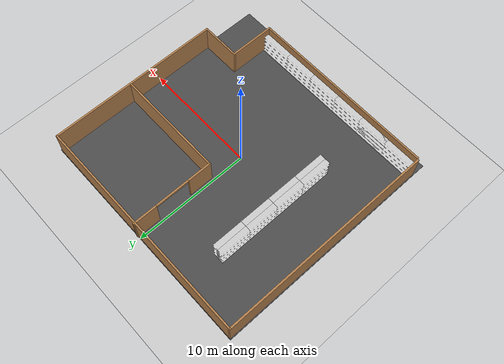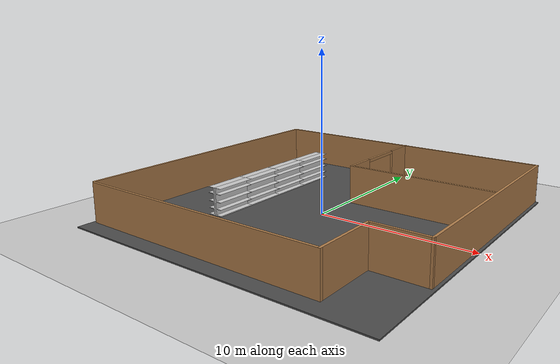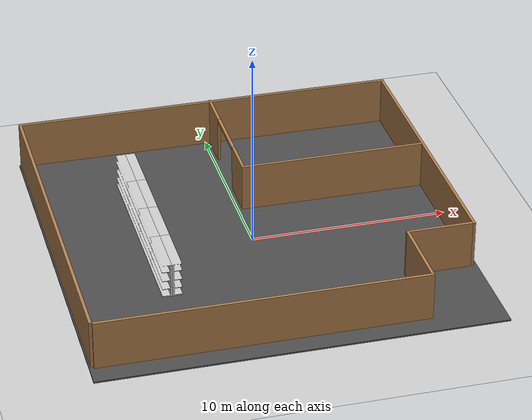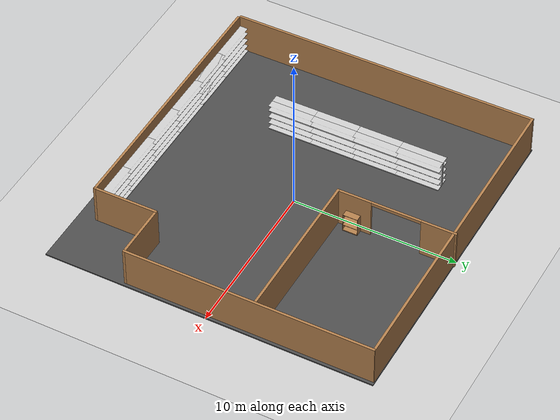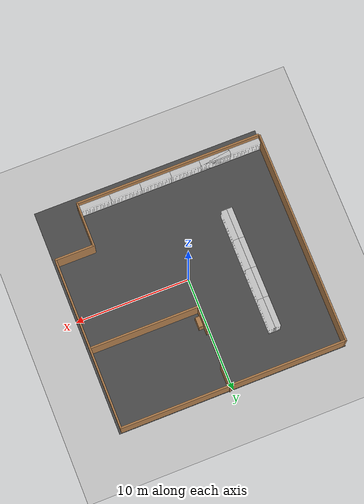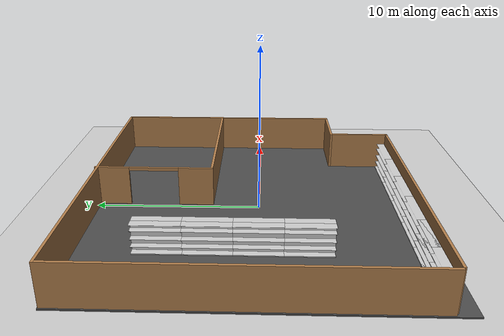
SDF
<sdf version="1.7">
 <world name="default">
  <model name="ground_plane">
   <static>1</static>
   <link name="link">
    <collision name="collision">
     <geometry><plane><normal>0 0 1</normal><size>100 100</size></plane></geometry>
     <surface><friction><ode><mu>100</mu><mu2>50</mu2></ode></friction></surface>
    </collision>
    <visual name="visual">
     <cast_shadows>0</cast_shadows>
     <geometry><plane><normal>0 0 1</normal><size>100 100</size></plane></geometry>
     <material>
      <script><uri>file://media/materials/scripts/gazebo.material</uri><name>Gazebo/Grey</name></script>
     </material>
    </visual>
   </link>
  </model>
  <gravity>0 0 -9.8</gravity>
  <magnetic_field>6e-06 2.3e-05 -4.2e-05</magnetic_field>
  <atmosphere type="adiabatic"/>
  <physics type="ode">
   <max_step_size>0.001</max_step_size>
   <real_time_factor>1</real_time_factor>
   <real_time_update_rate>1000</real_time_update_rate>
  </physics>
  <scene><ambient>0.4 0.4 0.4 1</ambient><background>0.7 0.7 0.7 1</background><shadows>1</shadows></scene>
  <audio><device>default</device></audio>
  <spherical_coordinates>
   <surface_model>EARTH_WGS84</surface_model>
   <latitude_deg>0</latitude_deg>
   <longitude_deg>0</longitude_deg>
   <elevation>0</elevation>
   <heading_deg>0</heading_deg>
  </spherical_coordinates>
  <model name="supermarket">
   <pose>-0.052742 0.545535 0 0 -0 0</pose>
   <link name="Wall_10">
    <collision name="Wall_10_Collision">
     <geometry><box><size>16.25 0.15 2.5</size></box></geometry>
     <pose>0 0 1.25 0 -0 0</pose>
    </collision>
    <visual name="Wall_10_Visual">
     <pose>0 0 1.25 0 -0 0</pose>
     <geometry><box><size>16.25 0.15 2.5</size></box></geometry>
     <material>
      <script><uri>file://media/materials/scripts/gazebo.material</uri><name>Gazebo/Wood</name></script>
      <ambient>1 1 1 1</ambient>
     </material>
     <meta><layer>0</layer></meta>
    </visual>
    <pose>-1.6 -9.43847 0 0 -0 3.14159</pose>
   </link>
   <link name="Wall_12">
    <collision name="Wall_12_Collision">
     <geometry><box><size>19.75 0.15 2.5</size></box></geometry>
     <pose>0 0 1.25 0 -0 0</pose>
    </collision>
    <visual name="Wall_12_Visual">
     <pose>0 0 1.25 0 -0 0</pose>
     <geometry><box><size>19.75 0.15 2.5</size></box></geometry>
     <material>
      <script><uri>file://media/materials/scripts/gazebo.material</uri><name>Gazebo/Wood</name></script>
      <ambient>1 1 1 1</ambient>
     </material>
     <meta><layer>0</layer></meta>
    </visual>
    <pose>0 9.34442 0 0 -0 0</pose>
   </link>
   <link name="Wall_14">
    <pose>0.326124 5.88847 0 0 -0 -1.5708</pose>
    <visual name="Wall_14_Visual_0">
     <pose>-2.56178 0 1.25 0 -0 0</pose>
     <geometry><box><size>2.12644 0.15 2.5</size></box></geometry>
     <material>
      <script><uri>file://media/materials/scripts/gazebo.material</uri><name>Gazebo/Wood</name></script>
      <ambient>0.760784 0.662745 0.627451 1</ambient>
     </material>
     <meta><layer>0</layer></meta>
    </visual>
    <collision name="Wall_14_Collision_0">
     <geometry><box><size>2.12644 0.15 2.5</size></box></geometry>
     <pose>-2.56178 0 1.25 0 -0 0</pose>
    </collision>
    <visual name="Wall_14_Visual_1">
     <pose>2.56322 0 1.25 0 -0 0</pose>
     <geometry><box><size>2.12356 0.15 2.5</size></box></geometry>
     <material>
      <script><uri>file://media/materials/scripts/gazebo.material</uri><name>Gazebo/Wood</name></script>
      <ambient>0.760784 0.662745 0.627451 1</ambient>
     </material>
     <meta><layer>0</layer></meta>
    </visual>
    <collision name="Wall_14_Collision_1">
     <geometry><box><size>2.12356 0.15 2.5</size></box></geometry>
     <pose>2.56322 0 1.25 0 -0 0</pose>
    </collision>
    <visual name="Wall_14_Visual_2">
     <pose>0.001436 0 2.4 0 -0 0</pose>
     <geometry><box><size>3 0.15 0.2</size></box></geometry>
     <material>
      <script><uri>file://media/materials/scripts/gazebo.material</uri><name>Gazebo/Wood</name></script>
      <ambient>0.760784 0.662745 0.627451 1</ambient>
     </material>
     <meta><layer>0</layer></meta>
    </visual>
    <collision name="Wall_14_Collision_2">
     <geometry><box><size>3 0.15 0.2</size></box></geometry>
     <pose>0.001436 0 2.4 0 -0 0</pose>
    </collision>
   </link>
   <link name="Wall_17">
    <collision name="Wall_17_Collision">
     <geometry><box><size>9.5 0.15 2.5</size></box></geometry>
     <pose>0 0 1.25 0 -0 0</pose>
    </collision>
    <visual name="Wall_17_Visual">
     <pose>0 0 1.25 0 -0 0</pose>
     <geometry><box><size>9.5 0.15 2.5</size></box></geometry>
     <material>
      <script><uri>file://media/materials/scripts/gazebo.material</uri><name>Gazebo/Wood</name></script>
      <ambient>1 0.764706 0.305882 1</ambient>
     </material>
     <meta><layer>0</layer></meta>
    </visual>
    <pose>5.00112 2.33846 0 0 -0 0</pose>
   </link>
   <link name="Wall_2">
    <collision name="Wall_2_Collision">
     <geometry><box><size>18.8177 0.15 2.5</size></box></geometry>
     <pose>0 0 1.25 0 -0 0</pose>
    </collision>
    <visual name="Wall_2_Visual">
     <pose>0 0 1.25 0 -0 0</pose>
     <geometry><box><size>18.8177 0.15 2.5</size></box></geometry>
     <material>
      <script><uri>file://media/materials/scripts/gazebo.material</uri><name>Gazebo/Wood</name></script>
      <ambient>1 0.764706 0.305882 1</ambient>
     </material>
     <meta><layer>0</layer></meta>
    </visual>
    <pose>-9.8 0.010583 0 0 -0 1.5708</pose>
   </link>
   <link name="Wall_4">
    <collision name="Wall_4_Collision">
     <geometry><box><size>15.0525 0.15 2.5</size></box></geometry>
     <pose>0 0 1.25 0 -0 0</pose>
    </collision>
    <visual name="Wall_4_Visual">
     <pose>0 0 1.25 0 -0 0</pose>
     <geometry><box><size>15.0525 0.15 2.5</size></box></geometry>
     <material>
      <script><uri>file://media/materials/scripts/gazebo.material</uri><name>Gazebo/Wood</name></script>
      <ambient>1 1 1 1</ambient>
     </material>
     <meta><layer>0</layer></meta>
    </visual>
    <pose>9.8 1.86277 0 0 -0 -1.5708</pose>
   </link>
   <link name="Wall_5">
    <collision name="Wall_5_Collision">
     <geometry><box><size>3.5 0.15 2.5</size></box></geometry>
     <pose>0 0 1.25 0 -0 0</pose>
    </collision>
    <visual name="Wall_5_Visual">
     <pose>0 0 1.25 0 -0 0</pose>
     <geometry><box><size>3.5 0.15 2.5</size></box></geometry>
     <material>
      <script><uri>file://media/materials/scripts/gazebo.material</uri><name>Gazebo/Wood</name></script>
      <ambient>1 1 1 1</ambient>
     </material>
     <meta><layer>0</layer></meta>
    </visual>
    <pose>8.125 -5.58847 0 0 -0 3.14159</pose>
   </link>
   <link name="Wall_6">
    <collision name="Wall_6_Collision">
     <geometry><box><size>4 0.15 2.5</size></box></geometry>
     <pose>0 0 1.25 0 -0 0</pose>
    </collision>
    <visual name="Wall_6_Visual">
     <pose>0 0 1.25 0 -0 0</pose>
     <geometry><box><size>4 0.15 2.5</size></box></geometry>
     <material>
      <script><uri>file://media/materials/scripts/gazebo.material</uri><name>Gazebo/Wood</name></script>
      <ambient>1 1 1 1</ambient>
     </material>
     <meta><layer>0</layer></meta>
    </visual>
    <pose>6.45 -7.51347 0 0 -0 -1.5708</pose>
   </link>
   <static>1</static>
  </model>
  <model name="supermarket shelf_clone">
   <pose>-4.76923 2.6936 0.878 0 -0 0</pose>
   <static>1</static>
   <link name="link">
    <inertial>
     <mass>10</mass>
     <inertia><ixx>2.69</ixx><ixy>0</ixy><ixz>0</ixz><iyy>0.173387</iyy><iyz>0</iyz><izz>2.85</izz></inertia>
    </inertial>
    <collision name="collision">
     <geometry><mesh><uri>/usr/share/gazebo-11/models/shelf/shelf_one.dae</uri></mesh></geometry>
    </collision>
    <visual name="visual">
     <geometry><mesh><uri>/usr/share/gazebo-11/models/shelf/shelf_one.dae</uri></mesh></geometry>
    </visual>
   </link>
  </model>
  <model name="supermarket shelf_clone_clone">
   <pose>-4.76923 -0.003387 0.878 0 -0 0</pose>
   <static>1</static>
   <link name="link">
    <inertial>
     <mass>10</mass>
     <inertia><ixx>2.69</ixx><ixy>0</ixy><ixz>0</ixz><iyy>0.173387</iyy><iyz>0</iyz><izz>2.85</izz></inertia>
    </inertial>
    <collision name="collision">
     <geometry><mesh><uri>/usr/share/gazebo-11/models/shelf/shelf_one.dae</uri></mesh></geometry>
    </collision>
    <visual name="visual">
     <geometry><mesh><uri>/usr/share/gazebo-11/models/shelf/shelf_one.dae</uri></mesh></geometry>
    </visual>
   </link>
  </model>
  <model name="supermarket shelf_clone_clone_clone">
   <pose>-5.19766 -0.007243 0.878 0 0 -3.14</pose>
   <static>1</static>
   <link name="link">
    <inertial>
     <mass>10</mass>
     <inertia><ixx>2.69</ixx><ixy>0</ixy><ixz>0</ixz><iyy>0.173387</iyy><iyz>0</iyz><izz>2.85</izz></inertia>
    </inertial>
    <collision name="collision">
     <geometry><mesh><uri>/usr/share/gazebo-11/models/shelf/shelf_one.dae</uri></mesh></geometry>
    </collision>
    <visual name="visual">
     <geometry><mesh><uri>/usr/share/gazebo-11/models/shelf/shelf_one.dae</uri></mesh></geometry>
    </visual>
   </link>
  </model>
  <model name="supermarket shelf_clone_clone_clone_clone">
   <pose>-5.19766 2.6936 0.878 0 0 -3.14</pose>
   <static>1</static>
   <link name="link">
    <inertial>
     <mass>10</mass>
     <inertia><ixx>2.69</ixx><ixy>0</ixy><ixz>0</ixz><iyy>0.173387</iyy><iyz>0</iyz><izz>2.85</izz></inertia>
    </inertial>
    <collision name="collision">
     <geometry><mesh><uri>/usr/share/gazebo-11/models/shelf/shelf_one.dae</uri></mesh></geometry>
    </collision>
    <visual name="visual">
     <geometry><mesh><uri>/usr/share/gazebo-11/models/shelf/shelf_one.dae</uri></mesh></geometry>
    </visual>
   </link>
  </model>
  <model name="supermarket shelf_clone_clone_clone_clone_clone">
   <pose>-5.19766 5.38263 0.878 0 0 -3.14</pose>
   <static>1</static>
   <link name="link">
    <inertial>
     <mass>10</mass>
     <inertia><ixx>2.69</ixx><ixy>0</ixy><ixz>0</ixz><iyy>0.173387</iyy><iyz>0</iyz><izz>2.85</izz></inertia>
    </inertial>
    <collision name="collision">
     <geometry><mesh><uri>/usr/share/gazebo-11/models/shelf/shelf_one.dae</uri></mesh></geometry>
    </collision>
    <visual name="visual">
     <geometry><mesh><uri>/usr/share/gazebo-11/models/shelf/shelf_one.dae</uri></mesh></geometry>
    </visual>
   </link>
  </model>
  <model name="supermarket shelf_clone_clone_clone_0">
   <pose>-8.42214 -8.57565 0.878 0 -0 1.57</pose>
   <static>1</static>
   <link name="link">
    <inertial>
     <mass>10</mass>
     <inertia><ixx>2.69</ixx><ixy>0</ixy><ixz>0</ixz><iyy>0.173387</iyy><iyz>0</iyz><izz>2.85</izz></inertia>
    </inertial>
    <collision name="collision">
     <geometry><mesh><uri>/usr/share/gazebo-11/models/shelf/shelf_one.dae</uri></mesh></geometry>
    </collision>
    <visual name="visual">
     <geometry><mesh><uri>/usr/share/gazebo-11/models/shelf/shelf_one.dae</uri></mesh></geometry>
    </visual>
   </link>
  </model>
  <model name="supermarket shelf_clone_clone_clone_0_clone">
   <pose>-5.74433 -8.57565 0.878 0 -0 1.57</pose>
   <static>1</static>
   <link name="link">
    <inertial>
     <mass>10</mass>
     <inertia><ixx>2.69</ixx><ixy>0</ixy><ixz>0</ixz><iyy>0.173387</iyy><iyz>0</iyz><izz>2.85</izz></inertia>
    </inertial>
    <collision name="collision">
     <geometry><mesh><uri>/usr/share/gazebo-11/models/shelf/shelf_one.dae</uri></mesh></geometry>
    </collision>
    <visual name="visual">
     <geometry><mesh><uri>/usr/share/gazebo-11/models/shelf/shelf_one.dae</uri></mesh></geometry>
    </visual>
   </link>
  </model>
  <model name="supermarket shelf_clone_clone_clone_1">
   <pose>-4.7686 -2.69756 0.878 0 -0 0</pose>
   <static>1</static>
   <link name="link">
    <inertial>
     <mass>10</mass>
     <inertia><ixx>2.69</ixx><ixy>0</ixy><ixz>0</ixz><iyy>0.173387</iyy><iyz>0</iyz><izz>2.85</izz></inertia>
    </inertial>
    <collision name="collision">
     <geometry><mesh><uri>/usr/share/gazebo-11/models/shelf/shelf_one.dae</uri></mesh></geometry>
    </collision>
    <visual name="visual">
     <geometry><mesh><uri>/usr/share/gazebo-11/models/shelf/shelf_one.dae</uri></mesh></geometry>
    </visual>
   </link>
  </model>
  <model name="supermarket shelf_clone_clone_clone_clone_0">
   <pose>-5.19766 -2.69756 0.878 0 0 -3.14</pose>
   <static>1</static>
   <link name="link">
    <inertial>
     <mass>10</mass>
     <inertia><ixx>2.69</ixx><ixy>0</ixy><ixz>0</ixz><iyy>0.173387</iyy><iyz>0</iyz><izz>2.85</izz></inertia>
    </inertial>
    <collision name="collision">
     <geometry><mesh><uri>/usr/share/gazebo-11/models/shelf/shelf_one.dae</uri></mesh></geometry>
    </collision>
    <visual name="visual">
     <geometry><mesh><uri>/usr/share/gazebo-11/models/shelf/shelf_one.dae</uri></mesh></geometry>
    </visual>
   </link>
  </model>
  <light name="sun" type="directional">
   <pose>0.161184 0.308418 10 0 -0 0</pose>
   <diffuse>0.8 0.8 0.8 1</diffuse>
   <specular>0.2 0.2 0.2 1</specular>
   <attenuation>
    <range>1000</range>
    <constant>0.9</constant>
    <linear>0.01</linear>
    <quadratic>0.001</quadratic>
   </attenuation>
   <direction>-0.5 0.1 -0.9</direction>
  </light>
  <model name="supermarket shelf_clone_clone_clone_0_clone_clone">
   <pose>-5.74433 -8.57423 0.878 0 -0 1.57</pose>
   <static>1</static>
   <link name="link">
    <inertial>
     <mass>10</mass>
     <inertia><ixx>2.69</ixx><ixy>0</ixy><ixz>0</ixz><iyy>0.173387</iyy><iyz>0</iyz><izz>2.85</izz></inertia>
    </inertial>
    <collision name="collision">
     <geometry><mesh><uri>/usr/share/gazebo-11/models/shelf/shelf_one.dae</uri></mesh></geometry>
    </collision>
    <visual name="visual">
     <geometry><mesh><uri>/usr/share/gazebo-11/models/shelf/shelf_one.dae</uri></mesh></geometry>
    </visual>
   </link>
  </model>
  <model name="supermarket shelf_clone_clone_clone_0_clone_clone_clone">
   <pose>-0.412233 -8.57558 0.878 0 -0 1.57</pose>
   <static>1</static>
   <link name="link">
    <inertial>
     <mass>10</mass>
     <inertia><ixx>2.69</ixx><ixy>0</ixy><ixz>0</ixz><iyy>0.173387</iyy><iyz>0</iyz><izz>2.85</izz></inertia>
    </inertial>
    <collision name="collision">
     <geometry><mesh><uri>/usr/share/gazebo-11/models/shelf/shelf_one.dae</uri></mesh></geometry>
    </collision>
    <visual name="visual">
     <geometry><mesh><uri>/usr/share/gazebo-11/models/shelf/shelf_one.dae</uri></mesh></geometry>
    </visual>
   </link>
  </model>
  <model name="supermarket shelf_clone_clone_clone_0_clone_clone_clone_clone">
   <pose>2.28797 -8.57557 0.878 0 -0 1.57</pose>
   <static>1</static>
   <link name="link">
    <inertial>
     <mass>10</mass>
     <inertia><ixx>2.69</ixx><ixy>0</ixy><ixz>0</ixz><iyy>0.173387</iyy><iyz>0</iyz><izz>2.85</izz></inertia>
    </inertial>
    <collision name="collision">
     <geometry><mesh><uri>/usr/share/gazebo-11/models/shelf/shelf_one.dae</uri></mesh></geometry>
    </collision>
    <visual name="visual">
     <geometry><mesh><uri>/usr/share/gazebo-11/models/shelf/shelf_one.dae</uri></mesh></geometry>
    </visual>
   </link>
  </model>
  <model name="supermarket shelf_clone_clone_clone_0_clone_clone_clone_clone_0">
   <pose>4.96878 -8.57556 0.878 0 -0 1.57</pose>
   <static>1</static>
   <link name="link">
    <inertial>
     <mass>10</mass>
     <inertia><ixx>2.69</ixx><ixy>0</ixy><ixz>0</ixz><iyy>0.173387</iyy><iyz>0</iyz><izz>2.85</izz></inertia>
    </inertial>
    <collision name="collision">
     <geometry><mesh><uri>/usr/share/gazebo-11/models/shelf/shelf_one.dae</uri></mesh></geometry>
    </collision>
    <visual name="visual">
     <geometry><mesh><uri>/usr/share/gazebo-11/models/shelf/shelf_one.dae</uri></mesh></geometry>
    </visual>
   </link>
  </model>
  <model name="supermarket shelf_clone_clone_clone_0_clone_clone_clone_0">
   <pose>-3.09835 -8.57565 0.878 0 -0 1.57</pose>
   <static>1</static>
   <link name="link">
    <inertial>
     <mass>10</mass>
     <inertia><ixx>2.69</ixx><ixy>0</ixy><ixz>0</ixz><iyy>0.173387</iyy><iyz>0</iyz><izz>2.85</izz></inertia>
    </inertial>
    <collision name="collision">
     <geometry><mesh><uri>/usr/share/gazebo-11/models/shelf/shelf_one.dae</uri></mesh></geometry>
    </collision>
    <visual name="visual">
     <geometry><mesh><uri>/usr/share/gazebo-11/models/shelf/shelf_one.dae</uri></mesh></geometry>
    </visual>
   </link>
  </model>
  <light name="user_point_light_0" type="point">
   <pose>6.50751 6.31317 1 0 -0 0</pose>
   <diffuse>0.5 0.5 0.5 1</diffuse>
   <specular>0.1 0.1 0.1 1</specular>
   <attenuation>
    <range>20</range>
    <constant>0.5</constant>
    <linear>0.01</linear>
    <quadratic>0.001</quadratic>
   </attenuation>
   <cast_shadows>0</cast_shadows>
   <direction>0 0 -1</direction>
  </light>
  <light name="user_point_light_1" type="point">
   <pose>2.82164 -0.449456 1 0 -0 0</pose>
   <diffuse>0.5 0.5 0.5 1</diffuse>
   <specular>0.1 0.1 0.1 1</specular>
   <attenuation>
    <range>20</range>
    <constant>0.5</constant>
    <linear>0.01</linear>
    <quadratic>0.001</quadratic>
   </attenuation>
   <cast_shadows>0</cast_shadows>
   <direction>0 0 -1</direction>
  </light>
  <light name="user_point_light_2" type="point">
   <pose>-3.79358 2.00515 1 0 -0 0</pose>
   <diffuse>0.5 0.5 0.5 1</diffuse>
   <specular>0.1 0.1 0.1 1</specular>
   <attenuation>
    <range>20</range>
    <constant>0.5</constant>
    <linear>0.01</linear>
    <quadratic>0.001</quadratic>
   </attenuation>
   <cast_shadows>0</cast_shadows>
   <direction>0 0 -1</direction>
  </light>
  <light name="user_point_light_1_clone" type="point">
   <pose>-2.35526 5.12361 1 0 -0 0</pose>
   <diffuse>0.5 0.5 0.5 1</diffuse>
   <specular>0.1 0.1 0.1 1</specular>
   <direction>0 0 -1</direction>
   <attenuation>
    <range>20</range>
    <constant>0.5</constant>
    <linear>0.01</linear>
    <quadratic>0.001</quadratic>
   </attenuation>
   <cast_shadows>0</cast_shadows>
  </light>
  <light name="user_point_light_1_clone_0" type="point">
   <pose>-7.38943 -5.31314 1 0 -0 0</pose>
   <diffuse>0.5 0.5 0.5 1</diffuse>
   <specular>0.1 0.1 0.1 1</specular>
   <direction>0 0 -1</direction>
   <attenuation>
    <range>20</range>
    <constant>0.5</constant>
    <linear>0.01</linear>
    <quadratic>0.001</quadratic>
   </attenuation>
   <cast_shadows>0</cast_shadows>
  </light>
  <light name="user_point_light_1_clone_1" type="point">
   <pose>-1.12962 -0.721007 1 0 -0 0</pose>
   <diffuse>0.5 0.5 0.5 1</diffuse>
   <specular>0.1 0.1 0.1 1</specular>
   <direction>0 0 -1</direction>
   <attenuation>
    <range>20</range>
    <constant>0.5</constant>
    <linear>0.01</linear>
    <quadratic>0.001</quadratic>
   </attenuation>
   <cast_shadows>0</cast_shadows>
  </light>
  <light name="user_point_light_1_clone_2" type="point">
   <pose>-8.2082 7.33597 1 0 -0 0</pose>
   <diffuse>0.5 0.5 0.5 1</diffuse>
   <specular>0.1 0.1 0.1 1</specular>
   <direction>0 0 -1</direction>
   <attenuation>
    <range>20</range>
    <constant>0.5</constant>
    <linear>0.01</linear>
    <quadratic>0.001</quadratic>
   </attenuation>
   <cast_shadows>0</cast_shadows>
  </light>
  <light name="user_point_light_1_clone_3" type="point">
   <pose>-7.01825 -4.43028 1 0 -0 0</pose>
   <diffuse>0.5 0.5 0.5 1</diffuse>
   <specular>0.1 0.1 0.1 1</specular>
   <direction>0 0 -1</direction>
   <attenuation>
    <range>20</range>
    <constant>0.5</constant>
    <linear>0.01</linear>
    <quadratic>0.001</quadratic>
   </attenuation>
   <cast_shadows>0</cast_shadows>
  </light>
  <light name="user_point_light_1_clone_4" type="point">
   <pose>8.45489 -0.057652 1 0 -0 0</pose>
   <diffuse>0.5 0.5 0.5 1</diffuse>
   <specular>0.1 0.1 0.1 1</specular>
   <direction>0 0 -1</direction>
   <attenuation>
    <range>20</range>
    <constant>0.5</constant>
    <linear>0.01</linear>
    <quadratic>0.001</quadratic>
   </attenuation>
   <cast_shadows>0</cast_shadows>
  </light>
  <light name="user_point_light_3" type="point">
   <pose>4.43812 -6.49236 1 0 -0 0</pose>
   <diffuse>0.5 0.5 0.5 1</diffuse>
   <specular>0.1 0.1 0.1 1</specular>
   <attenuation>
    <range>20</range>
    <constant>0.5</constant>
    <linear>0.01</linear>
    <quadratic>0.001</quadratic>
   </attenuation>
   <cast_shadows>0</cast_shadows>
   <direction>0 0 -1</direction>
  </light>
  <model name="bookshelf">
   <static>1</static>
   <link name="link">
    <inertial><mass>1</mass></inertial>
    <collision name="back">
     <pose>0 0.005 0.6 0 -0 0</pose>
     <geometry><box><size>0.9 0.01 1.2</size></box></geometry>
    </collision>
    <visual name="visual1">
     <pose>0 0.005 0.6 0 -0 0</pose>
     <geometry><box><size>0.9 0.01 1.2</size></box></geometry>
     <material>
      <script><uri>file://media/materials/scripts/gazebo.material</uri><name>Gazebo/Wood</name></script>
     </material>
    </visual>
    <collision name="left_side">
     <pose>0.45 -0.195 0.6 0 -0 0</pose>
     <geometry><box><size>0.02 0.4 1.2</size></box></geometry>
    </collision>
    <visual name="visual2">
     <pose>0.45 -0.195 0.6 0 -0 0</pose>
     <geometry><box><size>0.02 0.4 1.2</size></box></geometry>
     <material>
      <script><uri>file://media/materials/scripts/gazebo.material</uri><name>Gazebo/Wood</name></script>
     </material>
    </visual>
    <collision name="right_side">
     <pose>-0.45 -0.195 0.6 0 -0 0</pose>
     <geometry><box><size>0.02 0.4 1.2</size></box></geometry>
    </collision>
    <visual name="visual3">
     <pose>-0.45 -0.195 0.6 0 -0 0</pose>
     <geometry><box><size>0.02 0.4 1.2</size></box></geometry>
     <material>
      <script><uri>file://media/materials/scripts/gazebo.material</uri><name>Gazebo/Wood</name></script>
     </material>
    </visual>
    <collision name="bottom">
     <pose>0 -0.195 0.03 0 -0 0</pose>
     <geometry><box><size>0.88 0.4 0.06</size></box></geometry>
    </collision>
    <visual name="visual4">
     <pose>0 -0.195 0.03 0 -0 0</pose>
     <geometry><box><size>0.88 0.4 0.06</size></box></geometry>
     <material>
      <script><uri>file://media/materials/scripts/gazebo.material</uri><name>Gazebo/Wood</name></script>
     </material>
    </visual>
    <collision name="top">
     <pose>0 -0.195 1.19 0 -0 0</pose>
     <geometry><box><size>0.88 0.4 0.02</size></box></geometry>
    </collision>
    <visual name="visual5">
     <pose>0 -0.195 1.19 0 -0 0</pose>
     <geometry><box><size>0.88 0.4 0.02</size></box></geometry>
     <material>
      <script><uri>file://media/materials/scripts/gazebo.material</uri><name>Gazebo/Wood</name></script>
     </material>
    </visual>
    <collision name="low_shelf">
     <pose>0 -0.195 0.43 0 -0 0</pose>
     <geometry><box><size>0.88 0.4 0.02</size></box></geometry>
    </collision>
    <visual name="visual6">
     <pose>0 -0.195 0.43 0 -0 0</pose>
     <geometry><box><size>0.88 0.4 0.02</size></box></geometry>
     <material>
      <script><uri>file://media/materials/scripts/gazebo.material</uri><name>Gazebo/Wood</name></script>
     </material>
    </visual>
    <collision name="high_shelf">
     <pose>0 -0.195 0.8 0 -0 0</pose>
     <geometry><box><size>0.88 0.4 0.02</size></box></geometry>
    </collision>
    <visual name="visual7">
     <pose>0 -0.195 0.8 0 -0 0</pose>
     <geometry><box><size>0.88 0.4 0.02</size></box></geometry>
     <material>
      <script><uri>file://media/materials/scripts/gazebo.material</uri><name>Gazebo/Wood</name></script>
     </material>
    </visual>
   </link>
   <pose>0.396756 3.89634 0.086256 0 -0 1.57</pose>
  </model>
  <light name="user_directional_light_0" type="directional">
   <pose>-7.56991 -6.08953 1 0 -0 0</pose>
   <diffuse>0.5 0.5 0.5 1</diffuse>
   <specular>0.1 0.1 0.1 1</specular>
   <direction>0.1 0.1 -0.9</direction>
   <attenuation>
    <range>20</range>
    <constant>0.5</constant>
    <linear>0.01</linear>
    <quadratic>0.001</quadratic>
   </attenuation>
  </light>
  <light name="user_directional_light_1" type="directional">
   <pose>2.15895 -7.35936 1 0 -0 0</pose>
   <diffuse>0.5 0.5 0.5 1</diffuse>
   <specular>0.1 0.1 0.1 1</specular>
   <direction>0.1 0.1 -0.9</direction>
   <attenuation>
    <range>20</range>
    <constant>0.5</constant>
    <linear>0.01</linear>
    <quadratic>0.001</quadratic>
   </attenuation>
  </light>
  <light name="user_directional_light_2" type="directional">
   <pose>-6.95553 8.14957 1 0 -0 0</pose>
   <diffuse>0.5 0.5 0.5 1</diffuse>
   <specular>0.1 0.1 0.1 1</specular>
   <direction>0.1 0.1 -0.9</direction>
   <attenuation>
    <range>20</range>
    <constant>0.5</constant>
    <linear>0.01</linear>
    <quadratic>0.001</quadratic>
   </attenuation>
  </light>
  <light name="user_directional_light_3" type="directional">
   <pose>4.69007 5.49697 1 0 -0 0</pose>
   <diffuse>0.5 0.5 0.5 1</diffuse>
   <specular>0.1 0.1 0.1 1</specular>
   <direction>0.1 0.1 -0.9</direction>
   <attenuation>
    <range>20</range>
    <constant>0.5</constant>
    <linear>0.01</linear>
    <quadratic>0.001</quadratic>
   </attenuation>
  </light>
  <model name="asphalt_plane">
   <static>1</static>
   <link name="link">
    <collision name="collision"><geometry><box><size>20 20 0.1</size></box></geometry></collision>
    <visual name="visual">
     <cast_shadows>0</cast_shadows>
     <geometry><box><size>20 20 0.1</size></box></geometry>
     <material>
      <script>
       <uri>model://asphalt_plane/materials/scripts</uri>
       <uri>model://asphalt_plane/materials/textures</uri>
       <name>vrc/asphalt</name>
      </script>
     </material>
    </visual>
   </link>
  </model>
  <model name="supermarket shelf_clone_clone_0">
   <pose>-4.76923 5.38263 0.878 0 -0 0</pose>
   <static>1</static>
   <link name="link">
    <inertial>
     <mass>10</mass>
     <inertia><ixx>2.69</ixx><ixy>0</ixy><ixz>0</ixz><iyy>0.173387</iyy><iyz>0</iyz><izz>2.85</izz></inertia>
    </inertial>
    <collision name="collision">
     <geometry><mesh><uri>/usr/share/gazebo-11/models/shelf/shelf_one.dae</uri></mesh></geometry>
    </collision>
    <visual name="visual">
     <geometry><mesh><uri>/usr/share/gazebo-11/models/shelf/shelf_one.dae</uri></mesh></geometry>
    </visual>
   </link>
  </model>
 </world>
</sdf>
